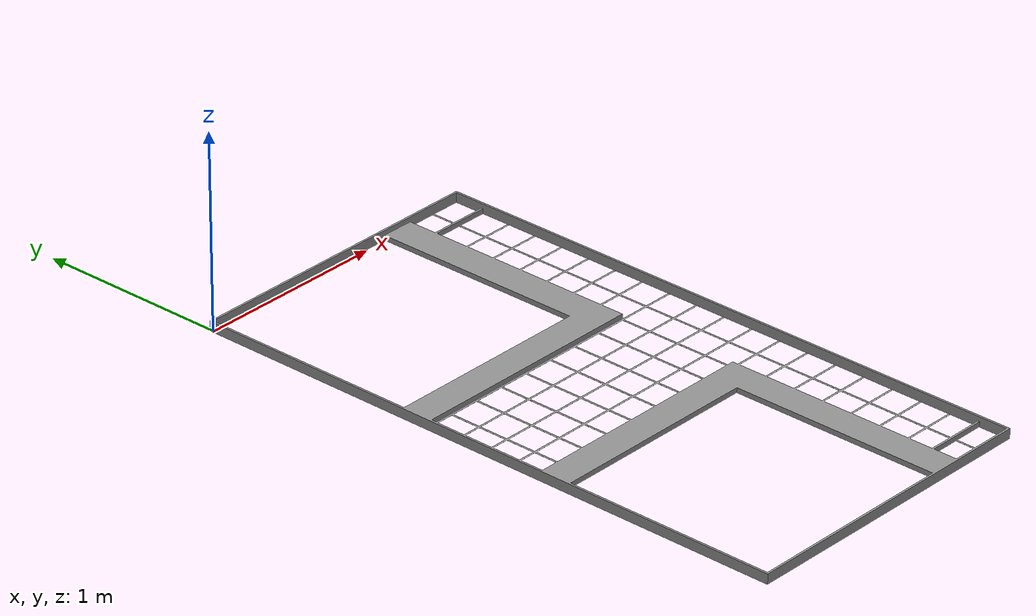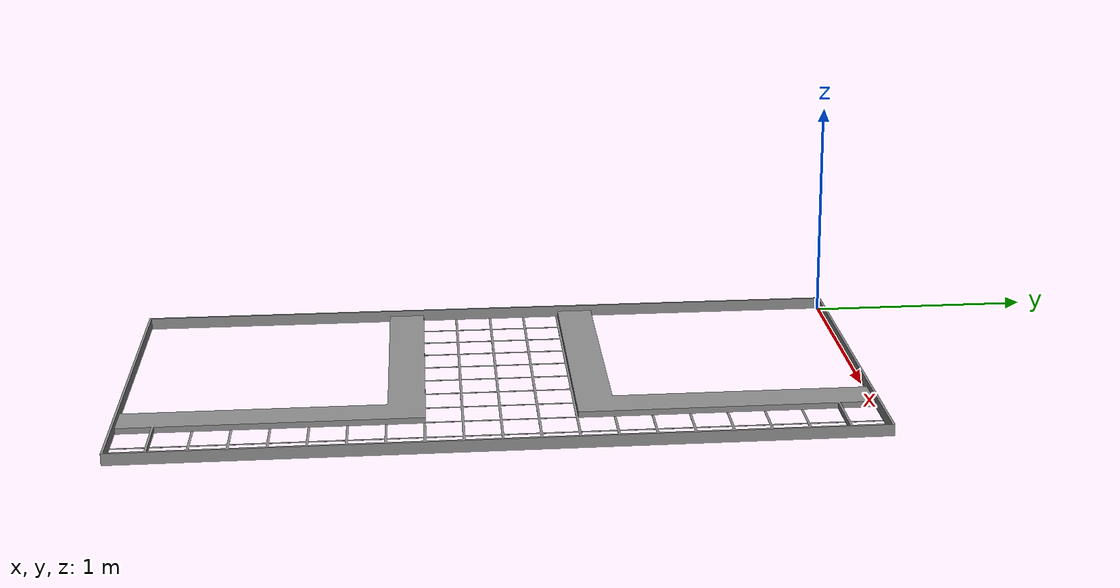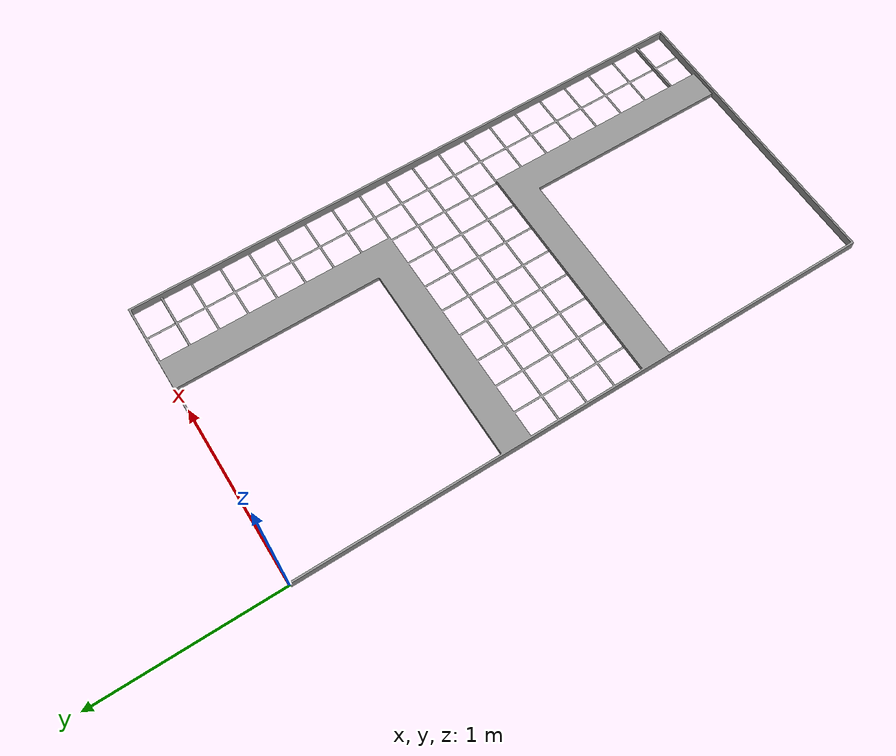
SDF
<?xml version="1.0"?>
<sdf version="1.5">
    <model name="round1_arena">
        <static>true</static>
        <pose> 0 0 0 0 0 0 </pose>
        <link name = "arena">
            <collision name="collision">
                <geometry>
                    <mesh>
                        <uri>model://round1_arena/meshes/arena_base.stl</uri>
                        <scale>0.001 0.001 0.001</scale>
                    </mesh>
                </geometry>
            </collision>
            <visual name="visual">
                <geometry>
                    <mesh>
                        <uri>model://round1_arena/meshes/arena_base.stl</uri>
                        <scale>0.001 0.001 0.001</scale>
                    </mesh>
                </geometry>
                <cast_shadows>false</cast_shadows>
                <material>
                    <ambient>0.1 0.1 0.1 1.0</ambient>
                    <diffuse>0.56666695 0.56666695 0.56666695 1.0</diffuse>
                    <specular>0.6000003 0.6000003 0.6000003 1.0</specular>
                    <lighting>1</lighting>
                </material>
            </visual>
        </link>
    </model>
</sdf>
